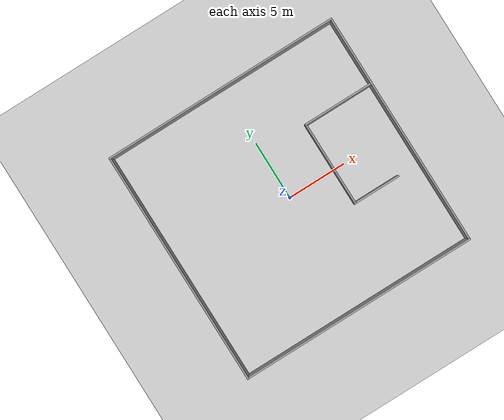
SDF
<sdf version="1.7">
 <world name="default">
  <light name="sun" type="directional">
   <pose>0 0 10 0 -0 0</pose>
   <diffuse>0.8 0.8 0.8 1</diffuse>
   <specular>0.2 0.2 0.2 1</specular>
   <attenuation>
    <range>1000</range>
    <constant>0.9</constant>
    <linear>0.01</linear>
    <quadratic>0.001</quadratic>
   </attenuation>
   <direction>-0.5 0.1 -0.9</direction>
   <spot><inner_angle>0</inner_angle><outer_angle>0</outer_angle><falloff>0</falloff></spot>
  </light>
  <model name="ground_plane">
   <static>1</static>
   <link name="link">
    <collision name="collision">
     <geometry><plane><normal>0 0 1</normal><size>100 100</size></plane></geometry>
     <surface>
      <contact><collide_bitmask>65535</collide_bitmask></contact>
      <friction><ode><mu>100</mu><mu2>50</mu2></ode></friction>
     </surface>
    </collision>
    <visual name="visual">
     <cast_shadows>0</cast_shadows>
     <geometry><plane><normal>0 0 1</normal><size>100 100</size></plane></geometry>
     <material>
      <script><uri>file://media/materials/scripts/gazebo.material</uri><name>Gazebo/Grey</name></script>
     </material>
    </visual>
   </link>
  </model>
  <gravity>0 0 -9.8</gravity>
  <magnetic_field>6e-06 2.3e-05 -4.2e-05</magnetic_field>
  <atmosphere type="adiabatic"/>
  <physics type="ode">
   <max_step_size>0.001</max_step_size>
   <real_time_factor>1</real_time_factor>
   <real_time_update_rate>1000</real_time_update_rate>
  </physics>
  <scene><ambient>0.4 0.4 0.4 1</ambient><background>0.7 0.7 0.7 1</background><shadows>1</shadows></scene>
  <spherical_coordinates>
   <surface_model>EARTH_WGS84</surface_model>
   <latitude_deg>0</latitude_deg>
   <longitude_deg>0</longitude_deg>
   <elevation>0</elevation>
   <heading_deg>0</heading_deg>
  </spherical_coordinates>
  <model name="Untitled">
   <link name="Wall_0">
    <pose>0 9.93826 0 0 -0 0.001158</pose>
    <visual name="Wall_0_Visual">
     <pose>0 0 1.25 0 -0 0</pose>
     <geometry><box><size>20.133 0.15 2.5</size></box></geometry>
     <material>
      <script><uri>file://media/materials/scripts/gazebo.material</uri><name>Gazebo/Grey</name></script>
      <ambient>1 1 1 1</ambient>
      <shader type="pixel"/>
     </material>
     <meta><layer>0</layer></meta>
    </visual>
    <collision name="Wall_0_Collision">
     <pose>0 0 1.25 0 -0 0</pose>
     <geometry><box><size>20.133 0.15 2.5</size></box></geometry>
     <surface>
      <friction>
       <ode><mu>1</mu><mu2>1</mu2><fdir1>0 0 0</fdir1><slip1>0</slip1><slip2>0</slip2></ode>
       <torsional>
        <coefficient>1</coefficient>
        <patch_radius>0</patch_radius>
        <surface_radius>0</surface_radius>
        <use_patch_radius>1</use_patch_radius>
        <ode><slip>0</slip></ode>
       </torsional>
      </friction>
      <bounce><restitution_coefficient>0</restitution_coefficient><threshold>1e+06</threshold></bounce>
      <contact>
       <collide_without_contact>0</collide_without_contact>
       <collide_without_contact_bitmask>1</collide_without_contact_bitmask>
       <collide_bitmask>1</collide_bitmask>
       <ode>
        <soft_cfm>0</soft_cfm>
        <soft_erp>0.2</soft_erp>
        <kp>1e+13</kp>
        <kd>1</kd>
        <max_vel>0.01</max_vel>
        <min_depth>0</min_depth>
       </ode>
       <bullet>
        <split_impulse>1</split_impulse>
        <split_impulse_penetration_threshold>-0.01</split_impulse_penetration_threshold>
        <soft_cfm>0</soft_cfm>
        <soft_erp>0.2</soft_erp>
        <kp>1e+13</kp>
        <kd>1</kd>
       </bullet>
      </contact>
     </surface>
    </collision>
   </link>
   <link name="Wall_1">
    <pose>9.9915 9.92669 0 0 -0 0</pose>
    <visual name="Wall_1_Visual">
     <pose>0 0 1.25 0 -0 0</pose>
     <geometry><box><size>0.15 0.15 2.5</size></box></geometry>
     <material>
      <script><uri>file://media/materials/scripts/gazebo.material</uri><name>Gazebo/Grey</name></script>
      <ambient>1 1 1 1</ambient>
      <shader type="pixel"/>
     </material>
     <meta><layer>0</layer></meta>
    </visual>
    <collision name="Wall_1_Collision">
     <pose>0 0 1.25 0 -0 0</pose>
     <geometry><box><size>0.15 0.15 2.5</size></box></geometry>
     <surface>
      <friction>
       <ode><mu>1</mu><mu2>1</mu2><fdir1>0 0 0</fdir1><slip1>0</slip1><slip2>0</slip2></ode>
       <torsional>
        <coefficient>1</coefficient>
        <patch_radius>0</patch_radius>
        <surface_radius>0</surface_radius>
        <use_patch_radius>1</use_patch_radius>
        <ode><slip>0</slip></ode>
       </torsional>
      </friction>
      <bounce><restitution_coefficient>0</restitution_coefficient><threshold>1e+06</threshold></bounce>
      <contact>
       <collide_without_contact>0</collide_without_contact>
       <collide_without_contact_bitmask>1</collide_without_contact_bitmask>
       <collide_bitmask>1</collide_bitmask>
       <ode>
        <soft_cfm>0</soft_cfm>
        <soft_erp>0.2</soft_erp>
        <kp>1e+13</kp>
        <kd>1</kd>
        <max_vel>0.01</max_vel>
        <min_depth>0</min_depth>
       </ode>
       <bullet>
        <split_impulse>1</split_impulse>
        <split_impulse_penetration_threshold>-0.01</split_impulse_penetration_threshold>
        <soft_cfm>0</soft_cfm>
        <soft_erp>0.2</soft_erp>
        <kp>1e+13</kp>
        <kd>1</kd>
       </bullet>
      </contact>
     </surface>
    </collision>
   </link>
   <link name="Wall_3">
    <pose>-9.9915 -0.024908 0 0 0 -1.5708</pose>
    <visual name="Wall_3_Visual">
     <pose>0 0 1.25 0 -0 0</pose>
     <geometry><box><size>20 0.15 2.5</size></box></geometry>
     <material>
      <script><uri>file://media/materials/scripts/gazebo.material</uri><name>Gazebo/Grey</name></script>
      <ambient>1 1 1 1</ambient>
      <shader type="pixel"/>
     </material>
     <meta><layer>0</layer></meta>
    </visual>
    <collision name="Wall_3_Collision">
     <pose>0 0 1.25 0 -0 0</pose>
     <geometry><box><size>20 0.15 2.5</size></box></geometry>
     <surface>
      <friction>
       <ode><mu>1</mu><mu2>1</mu2><fdir1>0 0 0</fdir1><slip1>0</slip1><slip2>0</slip2></ode>
       <torsional>
        <coefficient>1</coefficient>
        <patch_radius>0</patch_radius>
        <surface_radius>0</surface_radius>
        <use_patch_radius>1</use_patch_radius>
        <ode><slip>0</slip></ode>
       </torsional>
      </friction>
      <bounce><restitution_coefficient>0</restitution_coefficient><threshold>1e+06</threshold></bounce>
      <contact>
       <collide_without_contact>0</collide_without_contact>
       <collide_without_contact_bitmask>1</collide_without_contact_bitmask>
       <collide_bitmask>1</collide_bitmask>
       <ode>
        <soft_cfm>0</soft_cfm>
        <soft_erp>0.2</soft_erp>
        <kp>1e+13</kp>
        <kd>1</kd>
        <max_vel>0.01</max_vel>
        <min_depth>0</min_depth>
       </ode>
       <bullet>
        <split_impulse>1</split_impulse>
        <split_impulse_penetration_threshold>-0.01</split_impulse_penetration_threshold>
        <soft_cfm>0</soft_cfm>
        <soft_erp>0.2</soft_erp>
        <kp>1e+13</kp>
        <kd>1</kd>
       </bullet>
      </contact>
     </surface>
    </collision>
   </link>
   <link name="Wall_5">
    <pose>0.066501 -9.92331 0 0 -0 0</pose>
    <visual name="Wall_5_Visual">
     <pose>0 0 1.25 0 -0 0</pose>
     <geometry><box><size>20 0.15 2.5</size></box></geometry>
     <material>
      <script><uri>file://media/materials/scripts/gazebo.material</uri><name>Gazebo/Grey</name></script>
      <ambient>1 1 1 1</ambient>
      <shader type="pixel"/>
     </material>
     <meta><layer>0</layer></meta>
    </visual>
    <collision name="Wall_5_Collision">
     <pose>0 0 1.25 0 -0 0</pose>
     <geometry><box><size>20 0.15 2.5</size></box></geometry>
     <surface>
      <friction>
       <ode><mu>1</mu><mu2>1</mu2><fdir1>0 0 0</fdir1><slip1>0</slip1><slip2>0</slip2></ode>
       <torsional>
        <coefficient>1</coefficient>
        <patch_radius>0</patch_radius>
        <surface_radius>0</surface_radius>
        <use_patch_radius>1</use_patch_radius>
        <ode><slip>0</slip></ode>
       </torsional>
      </friction>
      <bounce><restitution_coefficient>0</restitution_coefficient><threshold>1e+06</threshold></bounce>
      <contact>
       <collide_without_contact>0</collide_without_contact>
       <collide_without_contact_bitmask>1</collide_without_contact_bitmask>
       <collide_bitmask>1</collide_bitmask>
       <ode>
        <soft_cfm>0</soft_cfm>
        <soft_erp>0.2</soft_erp>
        <kp>1e+13</kp>
        <kd>1</kd>
        <max_vel>0.01</max_vel>
        <min_depth>0</min_depth>
       </ode>
       <bullet>
        <split_impulse>1</split_impulse>
        <split_impulse_penetration_threshold>-0.01</split_impulse_penetration_threshold>
        <soft_cfm>0</soft_cfm>
        <soft_erp>0.2</soft_erp>
        <kp>1e+13</kp>
        <kd>1</kd>
       </bullet>
      </contact>
     </surface>
    </collision>
   </link>
   <link name="Wall_6">
    <pose>9.9915 0.001692 0 0 -0 1.5708</pose>
    <visual name="Wall_6_Visual">
     <pose>0 0 1.25 0 -0 0</pose>
     <geometry><box><size>20 0.15 2.5</size></box></geometry>
     <material>
      <script><uri>file://media/materials/scripts/gazebo.material</uri><name>Gazebo/Grey</name></script>
      <ambient>1 1 1 1</ambient>
      <shader type="pixel"/>
     </material>
     <meta><layer>0</layer></meta>
    </visual>
    <collision name="Wall_6_Collision">
     <pose>0 0 1.25 0 -0 0</pose>
     <geometry><box><size>20 0.15 2.5</size></box></geometry>
     <surface>
      <friction>
       <ode><mu>1</mu><mu2>1</mu2><fdir1>0 0 0</fdir1><slip1>0</slip1><slip2>0</slip2></ode>
       <torsional>
        <coefficient>1</coefficient>
        <patch_radius>0</patch_radius>
        <surface_radius>0</surface_radius>
        <use_patch_radius>1</use_patch_radius>
        <ode><slip>0</slip></ode>
       </torsional>
      </friction>
      <bounce><restitution_coefficient>0</restitution_coefficient><threshold>1e+06</threshold></bounce>
      <contact>
       <collide_without_contact>0</collide_without_contact>
       <collide_without_contact_bitmask>1</collide_without_contact_bitmask>
       <collide_bitmask>1</collide_bitmask>
       <ode>
        <soft_cfm>0</soft_cfm>
        <soft_erp>0.2</soft_erp>
        <kp>1e+13</kp>
        <kd>1</kd>
        <max_vel>0.01</max_vel>
        <min_depth>0</min_depth>
       </ode>
       <bullet>
        <split_impulse>1</split_impulse>
        <split_impulse_penetration_threshold>-0.01</split_impulse_penetration_threshold>
        <soft_cfm>0</soft_cfm>
        <soft_erp>0.2</soft_erp>
        <kp>1e+13</kp>
        <kd>1</kd>
       </bullet>
      </contact>
     </surface>
    </collision>
   </link>
   <link name="Wall_7">
    <pose>9.9915 9.92669 0 0 -0 0</pose>
    <visual name="Wall_7_Visual">
     <pose>0 0 1.25 0 -0 0</pose>
     <geometry><box><size>0.15 0.15 2.5</size></box></geometry>
     <material>
      <script><uri>file://media/materials/scripts/gazebo.material</uri><name>Gazebo/Grey</name></script>
      <ambient>1 1 1 1</ambient>
      <shader type="pixel"/>
     </material>
     <meta><layer>0</layer></meta>
    </visual>
    <collision name="Wall_7_Collision">
     <pose>0 0 1.25 0 -0 0</pose>
     <geometry><box><size>0.15 0.15 2.5</size></box></geometry>
     <surface>
      <friction>
       <ode><mu>1</mu><mu2>1</mu2><fdir1>0 0 0</fdir1><slip1>0</slip1><slip2>0</slip2></ode>
       <torsional>
        <coefficient>1</coefficient>
        <patch_radius>0</patch_radius>
        <surface_radius>0</surface_radius>
        <use_patch_radius>1</use_patch_radius>
        <ode><slip>0</slip></ode>
       </torsional>
      </friction>
      <bounce><restitution_coefficient>0</restitution_coefficient><threshold>1e+06</threshold></bounce>
      <contact>
       <collide_without_contact>0</collide_without_contact>
       <collide_without_contact_bitmask>1</collide_without_contact_bitmask>
       <collide_bitmask>1</collide_bitmask>
       <ode>
        <soft_cfm>0</soft_cfm>
        <soft_erp>0.2</soft_erp>
        <kp>1e+13</kp>
        <kd>1</kd>
        <max_vel>0.01</max_vel>
        <min_depth>0</min_depth>
       </ode>
       <bullet>
        <split_impulse>1</split_impulse>
        <split_impulse_penetration_threshold>-0.01</split_impulse_penetration_threshold>
        <soft_cfm>0</soft_cfm>
        <soft_erp>0.2</soft_erp>
        <kp>1e+13</kp>
        <kd>1</kd>
       </bullet>
      </contact>
     </surface>
    </collision>
   </link>
   <static>1</static>
   <pose>-0.05239 -0.062321 0 0 -0 0</pose>
  </model>
  <model name="Untitled_0">
   <pose>4.97148 0.541061 0 0 -0 0</pose>
   <link name="Wall_15">
    <collision name="Wall_15_Collision">
     <geometry><box><size>6 0.15 2.5</size></box></geometry>
     <pose>0 0 1.25 0 -0 0</pose>
    </collision>
    <visual name="Wall_15_Visual">
     <pose>0 0 1.25 0 -0 0</pose>
     <geometry><box><size>6 0.15 2.5</size></box></geometry>
     <material>
      <script><uri>file://media/materials/scripts/gazebo.material</uri><name>Gazebo/Grey</name></script>
      <ambient>1 1 1 1</ambient>
     </material>
     <meta><layer>0</layer></meta>
    </visual>
    <pose>1.97148 3.55 0 0 -0 0</pose>
   </link>
   <link name="Wall_18">
    <collision name="Wall_18_Collision">
     <geometry><box><size>7.25 0.15 2.5</size></box></geometry>
     <pose>0 0 1.25 0 -0 0</pose>
    </collision>
    <visual name="Wall_18_Visual">
     <pose>0 0 1.25 0 -0 0</pose>
     <geometry><box><size>7.25 0.15 2.5</size></box></geometry>
     <material>
      <script><uri>file://media/materials/scripts/gazebo.material</uri><name>Gazebo/Grey</name></script>
      <ambient>1 1 1 1</ambient>
     </material>
     <meta><layer>0</layer></meta>
    </visual>
    <pose>-0.953522 0 0 0 -0 -1.5708</pose>
   </link>
   <link name="Wall_19">
    <collision name="Wall_19_Collision">
     <geometry><box><size>4 0.15 2.5</size></box></geometry>
     <pose>0 0 1.25 0 -0 0</pose>
    </collision>
    <visual name="Wall_19_Visual">
     <pose>0 0 1.25 0 -0 0</pose>
     <geometry><box><size>4 0.15 2.5</size></box></geometry>
     <material>
      <script><uri>file://media/materials/scripts/gazebo.material</uri><name>Gazebo/Grey</name></script>
      <ambient>1 1 1 1</ambient>
     </material>
     <meta><layer>0</layer></meta>
    </visual>
    <pose>0.971478 -3.55 0 0 -0 0</pose>
   </link>
   <link name="Wall_20">
    <collision name="Wall_20_Collision">
     <geometry><box><size>0.16 0.15 2.5</size></box></geometry>
     <pose>0 0 1.25 0 -0 0</pose>
    </collision>
    <visual name="Wall_20_Visual">
     <pose>0 0 1.25 0 -0 0</pose>
     <geometry><box><size>0.16 0.15 2.5</size></box></geometry>
     <material>
      <script><uri>file://media/materials/scripts/gazebo.material</uri><name>Gazebo/Grey</name></script>
      <ambient>1 1 1 1</ambient>
     </material>
     <meta><layer>0</layer></meta>
    </visual>
    <pose>2.90148 -3.55 0 0 -0 0</pose>
   </link>
   <static>1</static>
  </model>
 </world>
</sdf>
